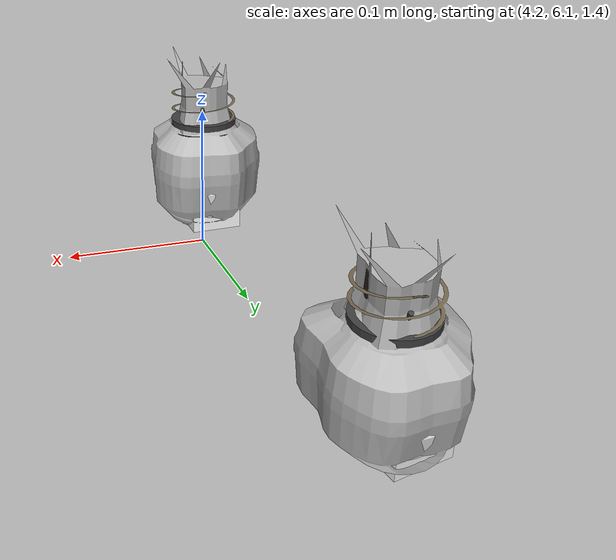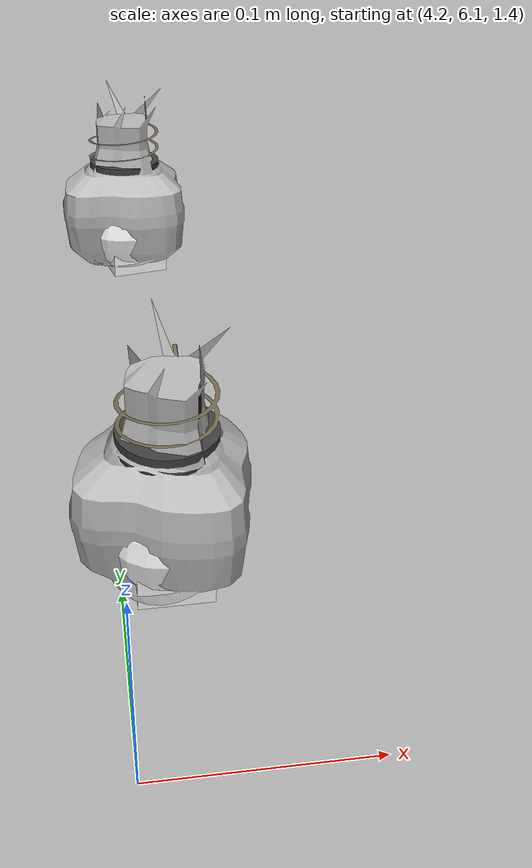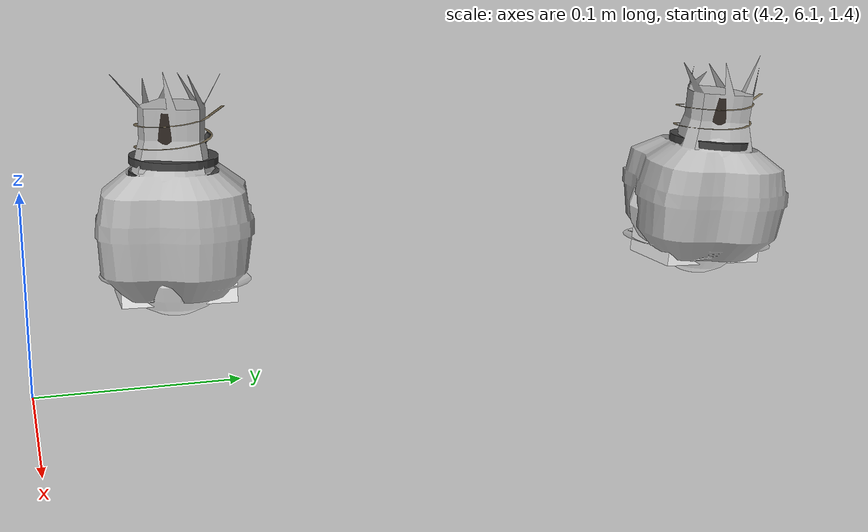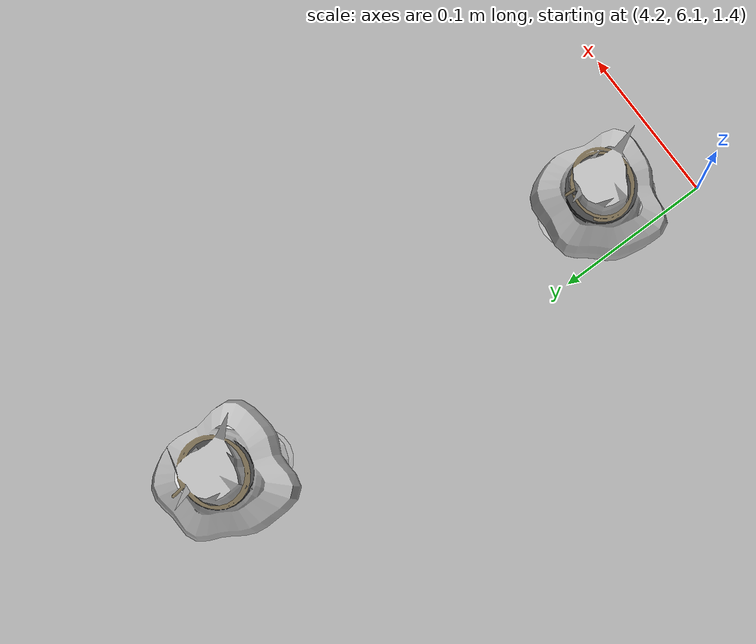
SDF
<sdf version="1.11">
 <world name="peach_orchard">
  <model name="ground">
   <static>true</static>
   <link name="link">
    <visual name="soil">
     <geometry><plane><normal>0 0 1</normal><size>32 22</size></plane></geometry>
     <material>
      <ambient>1 1 1 1</ambient>
      <diffuse>1 1 1 1</diffuse>
      <specular>0.1 0.1 0.1 1</specular>
      <pbr>
       <metal>
        <albedo_map>textures/soil_albedo.png</albedo_map>
        <normal_map type="tangent">textures/soil_normal.png</normal_map>
        <roughness>0.95</roughness>
        <metalness>0</metalness>
       </metal>
      </pbr>
     </material>
    </visual>
    <collision name="c_soil">
     <geometry><plane><normal>0 0 1</normal><size>32 22</size></plane></geometry>
    </collision>
   </link>
  </model>
  <model name="peach_tree_r3_t6_02">
   <pose>4.22 6.43241 1.45 0 0.0965843 1.43636</pose>
   <static>true</static>
   <link name="bag">
    <visual name="bag_mesh">
     <pose>0 0 0.0433442 0 0 0</pose>
     <geometry>
      <mesh><uri>model://peach_sim/meshes/bagged_peach.glb</uri><scale>0.986082 1.0679 0.985095</scale></mesh>
     </geometry>
    </visual>
    <visual name="body">
     <pose>0 0 0.0253442 0 0 0</pose>
     <geometry><ellipsoid><radii>0.0369781 0.0277654 0.0273717</radii></ellipsoid></geometry>
     <material>
      <ambient>1 1 1 1</ambient>
      <diffuse>1 1 1 1</diffuse>
      <specular>0.1 0.1 0.1 1</specular>
      <pbr>
       <metal>
        <albedo_map>textures/paper_bag_albedo.png</albedo_map>
        <normal_map type="tangent">textures/paper_bag_normal.png</normal_map>
        <roughness>0.72</roughness>
        <metalness>0</metalness>
       </metal>
      </pbr>
     </material>
    </visual>
    <visual name="bottom_fold">
     <pose>0 0 0.012 0 0 0.35</pose>
     <geometry><box><size>0.057316 0.0319303 0.022</size></box></geometry>
     <material>
      <ambient>1 1 1 1</ambient>
      <diffuse>1 1 1 1</diffuse>
      <specular>0.1 0.1 0.1 1</specular>
      <pbr>
       <metal>
        <albedo_map>textures/paper_bag_albedo.png</albedo_map>
        <normal_map type="tangent">textures/paper_bag_normal.png</normal_map>
        <roughness>0.8</roughness>
        <metalness>0</metalness>
       </metal>
      </pbr>
     </material>
    </visual>
    <visual name="fruit">
     <pose>0 0 0.0186099 0 0 0</pose>
     <geometry><sphere><radius>0.0255943</radius></sphere></geometry>
     <material>
      <ambient>1 1 1 1</ambient>
      <diffuse>1 1 1 1</diffuse>
      <specular>0.1 0.1 0.1 1</specular>
      <pbr>
       <metal>
        <albedo_map>textures/fruit_skin_albedo.png</albedo_map>
        <normal_map type="tangent">textures/fruit_skin_normal.png</normal_map>
        <roughness>0.55</roughness>
        <metalness>0</metalness>
       </metal>
      </pbr>
     </material>
    </visual>
    <visual name="neck">
     <pose>0 0 0.0596883 0 0 0</pose>
     <geometry><cylinder><radius>0.013</radius><length>0.018</length></cylinder></geometry>
     <material>
      <ambient>1 1 1 1</ambient>
      <diffuse>1 1 1 1</diffuse>
      <specular>0.1 0.1 0.1 1</specular>
      <pbr>
       <metal>
        <albedo_map>textures/paper_bag_albedo.png</albedo_map>
        <normal_map type="tangent">textures/paper_bag_normal.png</normal_map>
        <roughness>0.75</roughness>
        <metalness>0</metalness>
       </metal>
      </pbr>
     </material>
    </visual>
    <visual name="gather">
     <pose>0 0 0.0406883 0 0 0</pose>
     <geometry><cylinder><radius>0.019</radius><length>0.02</length></cylinder></geometry>
     <material>
      <ambient>1 1 1 1</ambient>
      <diffuse>1 1 1 1</diffuse>
      <specular>0.1 0.1 0.1 1</specular>
      <pbr>
       <metal>
        <albedo_map>textures/paper_bag_albedo.png</albedo_map>
        <normal_map type="tangent">textures/paper_bag_normal.png</normal_map>
        <roughness>0.8</roughness>
        <metalness>0</metalness>
       </metal>
      </pbr>
     </material>
    </visual>
    <visual name="inner_paper">
     <pose>0 0 0.0646883 0 0 0</pose>
     <geometry><cylinder><radius>0.01</radius><length>0.008</length></cylinder></geometry>
     <material>
      <ambient>0.180392 0.14902 0.133333 1</ambient>
      <diffuse>0.180392 0.14902 0.133333 1</diffuse>
      <specular>0.1 0.1 0.1 1</specular>
     </material>
    </visual>
    <visual name="wire_0">
     <pose>0 0 0.0546883 0 0 0</pose>
     <geometry><cylinder><radius>0.0205</radius><length>0.0035</length></cylinder></geometry>
     <material>
      <ambient>0.25 0.25 0.25 1</ambient>
      <diffuse>0.25 0.25 0.25 1</diffuse>
      <specular>0.1 0.1 0.1 1</specular>
     </material>
    </visual>
    <visual name="wire_1">
     <pose>0 0 0.0616883 0 0 0</pose>
     <geometry><cylinder><radius>0.0205</radius><length>0.0035</length></cylinder></geometry>
     <material>
      <ambient>0.25 0.25 0.25 1</ambient>
      <diffuse>0.25 0.25 0.25 1</diffuse>
      <specular>0.1 0.1 0.1 1</specular>
     </material>
    </visual>
    <visual name="wire_tail">
     <pose>0.01 0 0.0626883 0 0.521618 0</pose>
     <geometry><cylinder><radius>0.0012</radius><length>0.026</length></cylinder></geometry>
     <material>
      <ambient>0.25 0.25 0.25 1</ambient>
      <diffuse>0.25 0.25 0.25 1</diffuse>
      <specular>0.1 0.1 0.1 1</specular>
     </material>
    </visual>
    <collision name="c_body">
     <pose>0 0 0.0253442 0 0 0</pose>
     <geometry><cylinder><radius>0.0369781</radius><length>0.0506883</length></cylinder></geometry>
    </collision>
   </link>
  </model>
  <model name="peach_tree_r3_t6_03">
   <pose>4.22 6.16752 1.45 0 0.0258378 1.2371</pose>
   <static>true</static>
   <link name="bag">
    <visual name="bag_mesh">
     <pose>0 0 0.0459264 0 0 0</pose>
     <geometry>
      <mesh><uri>model://peach_sim/meshes/bagged_peach.glb</uri><scale>0.916569 1.0368 1.04378</scale></mesh>
     </geometry>
    </visual>
    <visual name="body">
     <pose>0 0 0.0279264 0 0 0</pose>
     <geometry><ellipsoid><radii>0.0343713 0.0269568 0.0301605</radii></ellipsoid></geometry>
     <material>
      <ambient>1 1 1 1</ambient>
      <diffuse>1 1 1 1</diffuse>
      <specular>0.1 0.1 0.1 1</specular>
      <pbr>
       <metal>
        <albedo_map>textures/paper_bag_albedo.png</albedo_map>
        <normal_map type="tangent">textures/paper_bag_normal.png</normal_map>
        <roughness>0.72</roughness>
        <metalness>0</metalness>
       </metal>
      </pbr>
     </material>
    </visual>
    <visual name="bottom_fold">
     <pose>0 0 0.012 0 0 0.35</pose>
     <geometry><box><size>0.0532756 0.0310003 0.022</size></box></geometry>
     <material>
      <ambient>1 1 1 1</ambient>
      <diffuse>1 1 1 1</diffuse>
      <specular>0.1 0.1 0.1 1</specular>
      <pbr>
       <metal>
        <albedo_map>textures/paper_bag_albedo.png</albedo_map>
        <normal_map type="tangent">textures/paper_bag_normal.png</normal_map>
        <roughness>0.8</roughness>
        <metalness>0</metalness>
       </metal>
      </pbr>
     </material>
    </visual>
    <visual name="fruit">
     <pose>0 0 0.0215733 0 0 0</pose>
     <geometry><sphere><radius>0.0286762</radius></sphere></geometry>
     <material>
      <ambient>1 1 1 1</ambient>
      <diffuse>1 1 1 1</diffuse>
      <specular>0.1 0.1 0.1 1</specular>
      <pbr>
       <metal>
        <albedo_map>textures/fruit_skin_albedo.png</albedo_map>
        <normal_map type="tangent">textures/fruit_skin_normal.png</normal_map>
        <roughness>0.55</roughness>
        <metalness>0</metalness>
       </metal>
      </pbr>
     </material>
    </visual>
    <visual name="neck">
     <pose>0 0 0.0648527 0 0 0</pose>
     <geometry><cylinder><radius>0.013</radius><length>0.018</length></cylinder></geometry>
     <material>
      <ambient>1 1 1 1</ambient>
      <diffuse>1 1 1 1</diffuse>
      <specular>0.1 0.1 0.1 1</specular>
      <pbr>
       <metal>
        <albedo_map>textures/paper_bag_albedo.png</albedo_map>
        <normal_map type="tangent">textures/paper_bag_normal.png</normal_map>
        <roughness>0.75</roughness>
        <metalness>0</metalness>
       </metal>
      </pbr>
     </material>
    </visual>
    <visual name="gather">
     <pose>0 0 0.0458527 0 0 0</pose>
     <geometry><cylinder><radius>0.019</radius><length>0.02</length></cylinder></geometry>
     <material>
      <ambient>1 1 1 1</ambient>
      <diffuse>1 1 1 1</diffuse>
      <specular>0.1 0.1 0.1 1</specular>
      <pbr>
       <metal>
        <albedo_map>textures/paper_bag_albedo.png</albedo_map>
        <normal_map type="tangent">textures/paper_bag_normal.png</normal_map>
        <roughness>0.8</roughness>
        <metalness>0</metalness>
       </metal>
      </pbr>
     </material>
    </visual>
    <visual name="inner_paper">
     <pose>0 0 0.0698527 0 0 0</pose>
     <geometry><cylinder><radius>0.01</radius><length>0.008</length></cylinder></geometry>
     <material>
      <ambient>0.180392 0.14902 0.133333 1</ambient>
      <diffuse>0.180392 0.14902 0.133333 1</diffuse>
      <specular>0.1 0.1 0.1 1</specular>
     </material>
    </visual>
    <visual name="wire_0">
     <pose>0 0 0.0598527 0 0 0</pose>
     <geometry><cylinder><radius>0.0205</radius><length>0.0035</length></cylinder></geometry>
     <material>
      <ambient>0.25 0.25 0.25 1</ambient>
      <diffuse>0.25 0.25 0.25 1</diffuse>
      <specular>0.1 0.1 0.1 1</specular>
     </material>
    </visual>
    <visual name="wire_1">
     <pose>0 0 0.0668527 0 0 0</pose>
     <geometry><cylinder><radius>0.0205</radius><length>0.0035</length></cylinder></geometry>
     <material>
      <ambient>0.25 0.25 0.25 1</ambient>
      <diffuse>0.25 0.25 0.25 1</diffuse>
      <specular>0.1 0.1 0.1 1</specular>
     </material>
    </visual>
    <visual name="wire_tail">
     <pose>0.01 0 0.0678527 0 0.521618 0</pose>
     <geometry><cylinder><radius>0.0012</radius><length>0.026</length></cylinder></geometry>
     <material>
      <ambient>0.25 0.25 0.25 1</ambient>
      <diffuse>0.25 0.25 0.25 1</diffuse>
      <specular>0.1 0.1 0.1 1</specular>
     </material>
    </visual>
    <collision name="c_body">
     <pose>0 0 0.0279264 0 0 0</pose>
     <geometry><cylinder><radius>0.0343713</radius><length>0.0558527</length></cylinder></geometry>
    </collision>
   </link>
  </model>
 </world>
</sdf>
